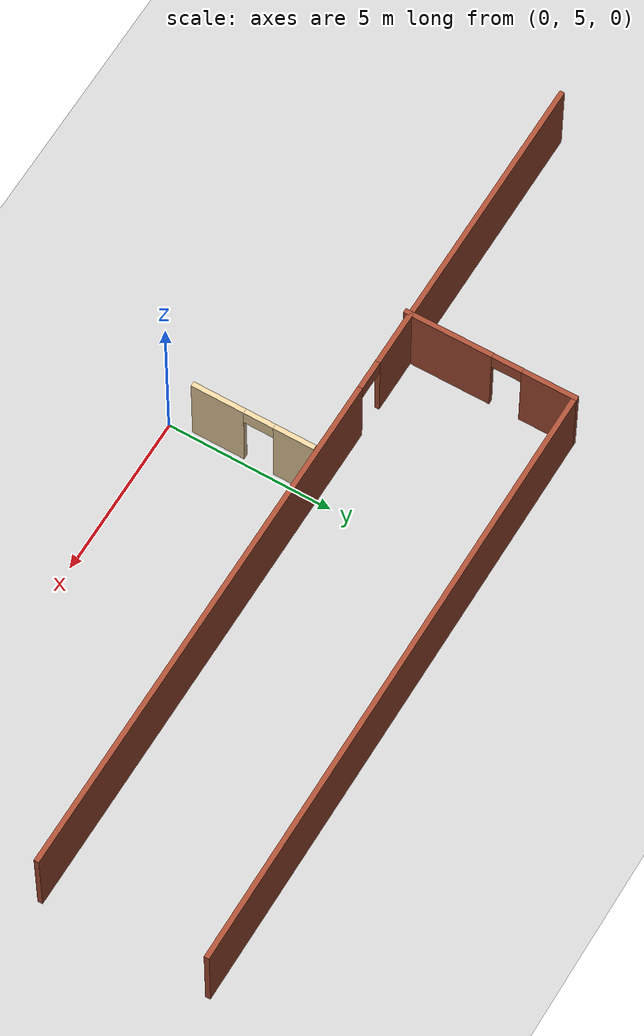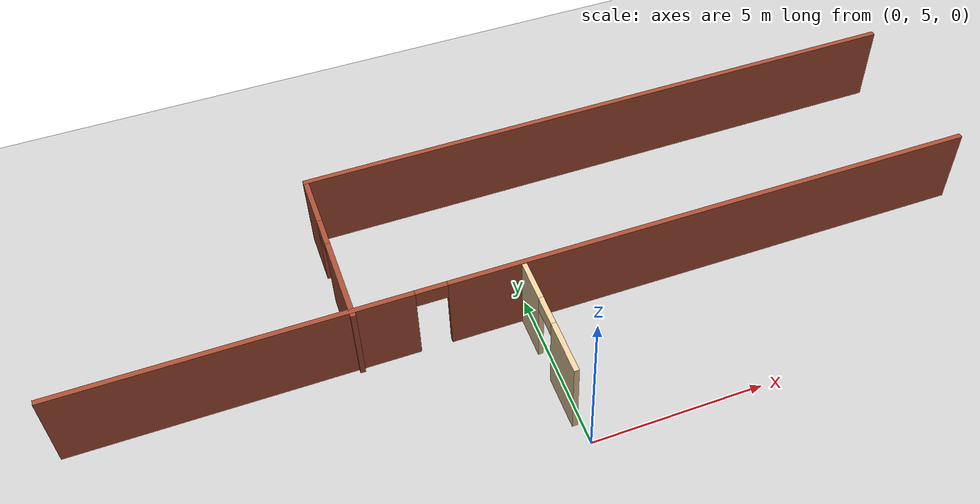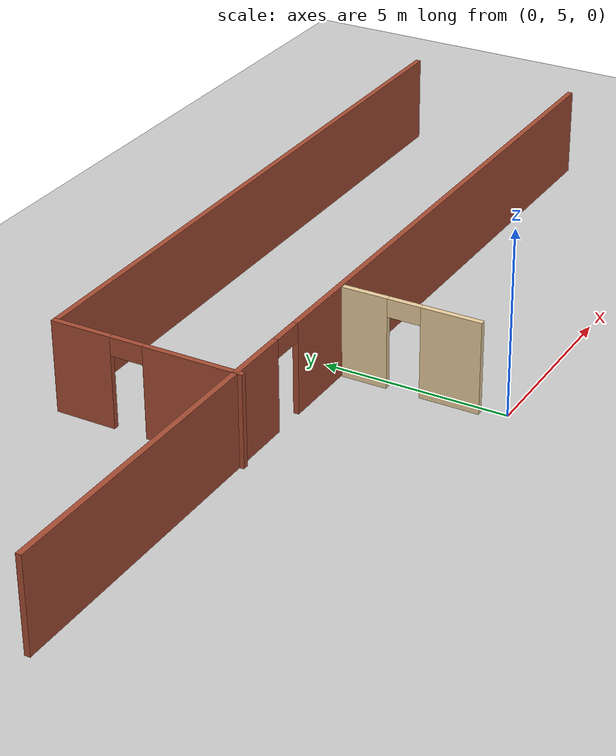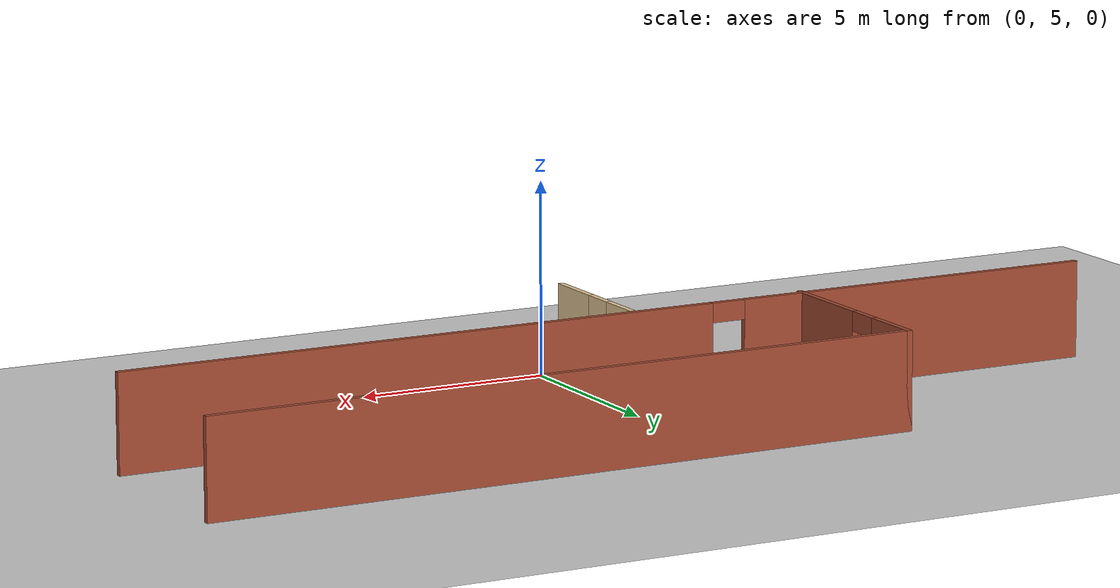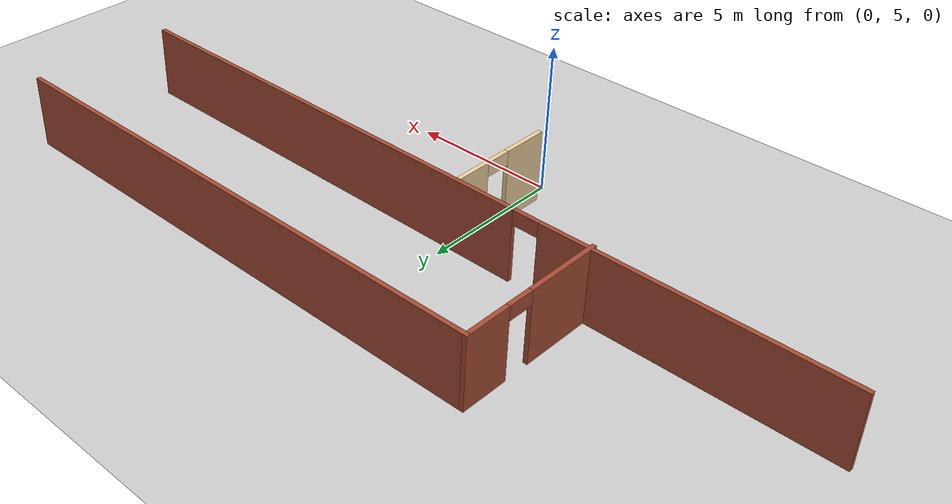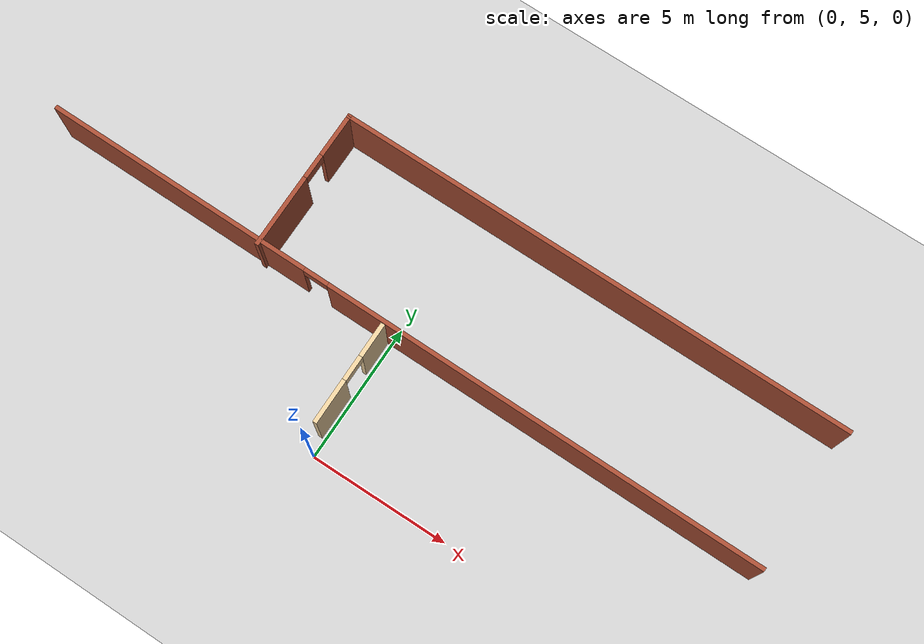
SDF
<sdf version="1.7">
 <world name="default">
  <model name="ground_plane">
   <static>1</static>
   <link name="link">
    <collision name="collision">
     <geometry><plane><normal>0 0 1</normal><size>100 100</size></plane></geometry>
     <surface>
      <contact><collide_bitmask>65535</collide_bitmask></contact>
      <friction><ode><mu>100</mu><mu2>50</mu2></ode></friction>
     </surface>
    </collision>
    <visual name="visual">
     <cast_shadows>0</cast_shadows>
     <geometry><plane><normal>0 0 1</normal><size>100 100</size></plane></geometry>
     <material>
      <script><uri>file://media/materials/scripts/gazebo.material</uri><name>Gazebo/Grey</name></script>
     </material>
    </visual>
   </link>
  </model>
  <model name="newworld">
   <link name="Wall_40">
    <pose>0.085373 8.57177 0 0 -0 3.13808</pose>
    <visual name="Wall_40_Visual_2">
     <pose>3.09238 0 2.25 0 -0 0</pose>
     <geometry><box><size>0.9 0.15 0.5</size></box></geometry>
     <material>
      <script><uri>file://media/materials/scripts/gazebo.material</uri><name>Gazebo/Bricks</name></script>
      <ambient>1 1 1 1</ambient>
      <shader type="pixel"/>
     </material>
     <meta><layer>0</layer></meta>
    </visual>
    <visual name="Wall_40_Visual_0">
     <pose>-5.33385 0 1.25 0 -0 0</pose>
     <geometry><box><size>15.9525 0.15 2.5</size></box></geometry>
     <material>
      <script><uri>file://media/materials/scripts/gazebo.material</uri><name>Gazebo/Bricks</name></script>
      <ambient>1 1 1 1</ambient>
      <shader type="pixel"/>
     </material>
     <meta><layer>0</layer></meta>
    </visual>
    <visual name="Wall_40_Visual_1">
     <pose>8.42623 0 1.25 0 -0 0</pose>
     <geometry><box><size>9.76771 0.15 2.5</size></box></geometry>
     <material>
      <script><uri>file://media/materials/scripts/gazebo.material</uri><name>Gazebo/Bricks</name></script>
      <ambient>1 1 1 1</ambient>
      <shader type="pixel"/>
     </material>
     <meta><layer>0</layer></meta>
    </visual>
    <collision name="Wall_40_Collision_0">
     <pose>-5.33385 0 1.25 0 -0 0</pose>
     <geometry><box><size>15.9525 0.15 2.5</size></box></geometry>
     <surface>
      <friction>
       <ode><mu>1</mu><mu2>1</mu2><fdir1>0 0 0</fdir1><slip1>0</slip1><slip2>0</slip2></ode>
       <torsional>
        <coefficient>1</coefficient>
        <patch_radius>0</patch_radius>
        <surface_radius>0</surface_radius>
        <use_patch_radius>1</use_patch_radius>
        <ode><slip>0</slip></ode>
       </torsional>
      </friction>
      <bounce><restitution_coefficient>0</restitution_coefficient><threshold>1e+06</threshold></bounce>
      <contact>
       <collide_without_contact>0</collide_without_contact>
       <collide_without_contact_bitmask>1</collide_without_contact_bitmask>
       <collide_bitmask>1</collide_bitmask>
       <ode>
        <soft_cfm>0</soft_cfm>
        <soft_erp>0.2</soft_erp>
        <kp>1e+13</kp>
        <kd>1</kd>
        <max_vel>0.01</max_vel>
        <min_depth>0</min_depth>
       </ode>
       <bullet>
        <split_impulse>1</split_impulse>
        <split_impulse_penetration_threshold>-0.01</split_impulse_penetration_threshold>
        <soft_cfm>0</soft_cfm>
        <soft_erp>0.2</soft_erp>
        <kp>1e+13</kp>
        <kd>1</kd>
       </bullet>
      </contact>
     </surface>
    </collision>
    <collision name="Wall_40_Collision_1">
     <pose>8.42623 0 1.25 0 -0 0</pose>
     <geometry><box><size>9.76771 0.15 2.5</size></box></geometry>
     <surface>
      <friction>
       <ode><mu>1</mu><mu2>1</mu2><fdir1>0 0 0</fdir1><slip1>0</slip1><slip2>0</slip2></ode>
       <torsional>
        <coefficient>1</coefficient>
        <patch_radius>0</patch_radius>
        <surface_radius>0</surface_radius>
        <use_patch_radius>1</use_patch_radius>
        <ode><slip>0</slip></ode>
       </torsional>
      </friction>
      <bounce><restitution_coefficient>0</restitution_coefficient><threshold>1e+06</threshold></bounce>
      <contact>
       <collide_without_contact>0</collide_without_contact>
       <collide_without_contact_bitmask>1</collide_without_contact_bitmask>
       <collide_bitmask>1</collide_bitmask>
       <ode>
        <soft_cfm>0</soft_cfm>
        <soft_erp>0.2</soft_erp>
        <kp>1e+13</kp>
        <kd>1</kd>
        <max_vel>0.01</max_vel>
        <min_depth>0</min_depth>
       </ode>
       <bullet>
        <split_impulse>1</split_impulse>
        <split_impulse_penetration_threshold>-0.01</split_impulse_penetration_threshold>
        <soft_cfm>0</soft_cfm>
        <soft_erp>0.2</soft_erp>
        <kp>1e+13</kp>
        <kd>1</kd>
       </bullet>
      </contact>
     </surface>
    </collision>
    <collision name="Wall_40_Collision_2">
     <pose>3.09238 0 2.25 0 -0 0</pose>
     <geometry><box><size>0.9 0.15 0.5</size></box></geometry>
     <surface>
      <friction>
       <ode><mu>1</mu><mu2>1</mu2><fdir1>0 0 0</fdir1><slip1>0</slip1><slip2>0</slip2></ode>
       <torsional>
        <coefficient>1</coefficient>
        <patch_radius>0</patch_radius>
        <surface_radius>0</surface_radius>
        <use_patch_radius>1</use_patch_radius>
        <ode><slip>0</slip></ode>
       </torsional>
      </friction>
      <bounce><restitution_coefficient>0</restitution_coefficient><threshold>1e+06</threshold></bounce>
      <contact>
       <collide_without_contact>0</collide_without_contact>
       <collide_without_contact_bitmask>1</collide_without_contact_bitmask>
       <collide_bitmask>1</collide_bitmask>
       <ode>
        <soft_cfm>0</soft_cfm>
        <soft_erp>0.2</soft_erp>
        <kp>1e+13</kp>
        <kd>1</kd>
        <max_vel>0.01</max_vel>
        <min_depth>0</min_depth>
       </ode>
       <bullet>
        <split_impulse>1</split_impulse>
        <split_impulse_penetration_threshold>-0.01</split_impulse_penetration_threshold>
        <soft_cfm>0</soft_cfm>
        <soft_erp>0.2</soft_erp>
        <kp>1e+13</kp>
        <kd>1</kd>
       </bullet>
      </contact>
     </surface>
    </collision>
   </link>
   <link name="Wall_58">
    <pose>-0.404713 6.61032 0 0 -0 1.5708</pose>
    <visual name="Wall_58_Visual_2">
     <pose>0.183638 0 2.25 0 -0 0</pose>
     <geometry><box><size>0.9 0.15 0.5</size></box></geometry>
     <material>
      <script><uri>file://media/materials/scripts/gazebo.material</uri><name>Gazebo/Grey</name></script>
      <ambient>0.921569 0.807843 0.615686 1</ambient>
      <shader type="pixel"/>
     </material>
     <meta><layer>0</layer></meta>
    </visual>
    <visual name="Wall_58_Visual_0">
     <pose>-1.07068 0 1.25 0 -0 0</pose>
     <geometry><box><size>1.60864 0.15 2.5</size></box></geometry>
     <material>
      <script><uri>file://media/materials/scripts/gazebo.material</uri><name>Gazebo/Grey</name></script>
      <ambient>0.921569 0.807843 0.615686 1</ambient>
      <shader type="pixel"/>
     </material>
     <meta><layer>0</layer></meta>
    </visual>
    <visual name="Wall_58_Visual_1">
     <pose>1.25432 0 1.25 0 -0 0</pose>
     <geometry><box><size>1.24136 0.15 2.5</size></box></geometry>
     <material>
      <script><uri>file://media/materials/scripts/gazebo.material</uri><name>Gazebo/Grey</name></script>
      <ambient>0.921569 0.807843 0.615686 1</ambient>
      <shader type="pixel"/>
     </material>
     <meta><layer>0</layer></meta>
    </visual>
    <collision name="Wall_58_Collision_0">
     <pose>-1.07068 0 1.25 0 -0 0</pose>
     <geometry><box><size>1.60864 0.15 2.5</size></box></geometry>
     <surface>
      <friction>
       <ode><mu>1</mu><mu2>1</mu2><fdir1>0 0 0</fdir1><slip1>0</slip1><slip2>0</slip2></ode>
       <torsional>
        <coefficient>1</coefficient>
        <patch_radius>0</patch_radius>
        <surface_radius>0</surface_radius>
        <use_patch_radius>1</use_patch_radius>
        <ode><slip>0</slip></ode>
       </torsional>
      </friction>
      <bounce><restitution_coefficient>0</restitution_coefficient><threshold>1e+06</threshold></bounce>
      <contact>
       <collide_without_contact>0</collide_without_contact>
       <collide_without_contact_bitmask>1</collide_without_contact_bitmask>
       <collide_bitmask>1</collide_bitmask>
       <ode>
        <soft_cfm>0</soft_cfm>
        <soft_erp>0.2</soft_erp>
        <kp>1e+13</kp>
        <kd>1</kd>
        <max_vel>0.01</max_vel>
        <min_depth>0</min_depth>
       </ode>
       <bullet>
        <split_impulse>1</split_impulse>
        <split_impulse_penetration_threshold>-0.01</split_impulse_penetration_threshold>
        <soft_cfm>0</soft_cfm>
        <soft_erp>0.2</soft_erp>
        <kp>1e+13</kp>
        <kd>1</kd>
       </bullet>
      </contact>
     </surface>
    </collision>
    <collision name="Wall_58_Collision_1">
     <pose>1.25432 0 1.25 0 -0 0</pose>
     <geometry><box><size>1.24136 0.15 2.5</size></box></geometry>
     <surface>
      <friction>
       <ode><mu>1</mu><mu2>1</mu2><fdir1>0 0 0</fdir1><slip1>0</slip1><slip2>0</slip2></ode>
       <torsional>
        <coefficient>1</coefficient>
        <patch_radius>0</patch_radius>
        <surface_radius>0</surface_radius>
        <use_patch_radius>1</use_patch_radius>
        <ode><slip>0</slip></ode>
       </torsional>
      </friction>
      <bounce><restitution_coefficient>0</restitution_coefficient><threshold>1e+06</threshold></bounce>
      <contact>
       <collide_without_contact>0</collide_without_contact>
       <collide_without_contact_bitmask>1</collide_without_contact_bitmask>
       <collide_bitmask>1</collide_bitmask>
       <ode>
        <soft_cfm>0</soft_cfm>
        <soft_erp>0.2</soft_erp>
        <kp>1e+13</kp>
        <kd>1</kd>
        <max_vel>0.01</max_vel>
        <min_depth>0</min_depth>
       </ode>
       <bullet>
        <split_impulse>1</split_impulse>
        <split_impulse_penetration_threshold>-0.01</split_impulse_penetration_threshold>
        <soft_cfm>0</soft_cfm>
        <soft_erp>0.2</soft_erp>
        <kp>1e+13</kp>
        <kd>1</kd>
       </bullet>
      </contact>
     </surface>
    </collision>
    <collision name="Wall_58_Collision_2">
     <pose>0.183638 0 2.25 0 -0 0</pose>
     <geometry><box><size>0.9 0.15 0.5</size></box></geometry>
     <surface>
      <friction>
       <ode><mu>1</mu><mu2>1</mu2><fdir1>0 0 0</fdir1><slip1>0</slip1><slip2>0</slip2></ode>
       <torsional>
        <coefficient>1</coefficient>
        <patch_radius>0</patch_radius>
        <surface_radius>0</surface_radius>
        <use_patch_radius>1</use_patch_radius>
        <ode><slip>0</slip></ode>
       </torsional>
      </friction>
      <bounce><restitution_coefficient>0</restitution_coefficient><threshold>1e+06</threshold></bounce>
      <contact>
       <collide_without_contact>0</collide_without_contact>
       <collide_without_contact_bitmask>1</collide_without_contact_bitmask>
       <collide_bitmask>1</collide_bitmask>
       <ode>
        <soft_cfm>0</soft_cfm>
        <soft_erp>0.2</soft_erp>
        <kp>1e+13</kp>
        <kd>1</kd>
        <max_vel>0.01</max_vel>
        <min_depth>0</min_depth>
       </ode>
       <bullet>
        <split_impulse>1</split_impulse>
        <split_impulse_penetration_threshold>-0.01</split_impulse_penetration_threshold>
        <soft_cfm>0</soft_cfm>
        <soft_erp>0.2</soft_erp>
        <kp>1e+13</kp>
        <kd>1</kd>
       </bullet>
      </contact>
     </surface>
    </collision>
   </link>
   <link name="Wall_63">
    <pose>-5.17255 11.0249 0 0 -0 1.5708</pose>
    <visual name="Wall_63_Visual_0">
     <pose>-1.27959 0 1.25 0 -0 0</pose>
     <geometry><box><size>2.69081 0.15 2.5</size></box></geometry>
     <material>
      <script><uri>file://media/materials/scripts/gazebo.material</uri><name>Gazebo/Bricks</name></script>
      <ambient>1 1 1 1</ambient>
      <shader type="pixel"/>
     </material>
     <meta><layer>0</layer></meta>
    </visual>
    <visual name="Wall_63_Visual_2">
     <pose>0.515814 0 2.25 0 -0 0</pose>
     <geometry><box><size>0.9 0.15 0.5</size></box></geometry>
     <material>
      <script><uri>file://media/materials/scripts/gazebo.material</uri><name>Gazebo/Bricks</name></script>
      <ambient>1 1 1 1</ambient>
      <shader type="pixel"/>
     </material>
     <meta><layer>0</layer></meta>
    </visual>
    <visual name="Wall_63_Visual_1">
     <pose>1.79541 0 1.25 0 -0 0</pose>
     <geometry><box><size>1.65919 0.15 2.5</size></box></geometry>
     <material>
      <script><uri>file://media/materials/scripts/gazebo.material</uri><name>Gazebo/Bricks</name></script>
      <ambient>1 1 1 1</ambient>
      <shader type="pixel"/>
     </material>
     <meta><layer>0</layer></meta>
    </visual>
    <collision name="Wall_63_Collision_1">
     <pose>1.79541 0 1.25 0 -0 0</pose>
     <geometry><box><size>1.65919 0.15 2.5</size></box></geometry>
     <surface>
      <friction>
       <ode><mu>1</mu><mu2>1</mu2><fdir1>0 0 0</fdir1><slip1>0</slip1><slip2>0</slip2></ode>
       <torsional>
        <coefficient>1</coefficient>
        <patch_radius>0</patch_radius>
        <surface_radius>0</surface_radius>
        <use_patch_radius>1</use_patch_radius>
        <ode><slip>0</slip></ode>
       </torsional>
      </friction>
      <bounce><restitution_coefficient>0</restitution_coefficient><threshold>1e+06</threshold></bounce>
      <contact>
       <collide_without_contact>0</collide_without_contact>
       <collide_without_contact_bitmask>1</collide_without_contact_bitmask>
       <collide_bitmask>1</collide_bitmask>
       <ode>
        <soft_cfm>0</soft_cfm>
        <soft_erp>0.2</soft_erp>
        <kp>1e+13</kp>
        <kd>1</kd>
        <max_vel>0.01</max_vel>
        <min_depth>0</min_depth>
       </ode>
       <bullet>
        <split_impulse>1</split_impulse>
        <split_impulse_penetration_threshold>-0.01</split_impulse_penetration_threshold>
        <soft_cfm>0</soft_cfm>
        <soft_erp>0.2</soft_erp>
        <kp>1e+13</kp>
        <kd>1</kd>
       </bullet>
      </contact>
     </surface>
    </collision>
    <collision name="Wall_63_Collision_2">
     <pose>0.515814 0 2.25 0 -0 0</pose>
     <geometry><box><size>0.9 0.15 0.5</size></box></geometry>
     <surface>
      <friction>
       <ode><mu>1</mu><mu2>1</mu2><fdir1>0 0 0</fdir1><slip1>0</slip1><slip2>0</slip2></ode>
       <torsional>
        <coefficient>1</coefficient>
        <patch_radius>0</patch_radius>
        <surface_radius>0</surface_radius>
        <use_patch_radius>1</use_patch_radius>
        <ode><slip>0</slip></ode>
       </torsional>
      </friction>
      <bounce><restitution_coefficient>0</restitution_coefficient><threshold>1e+06</threshold></bounce>
      <contact>
       <collide_without_contact>0</collide_without_contact>
       <collide_without_contact_bitmask>1</collide_without_contact_bitmask>
       <collide_bitmask>1</collide_bitmask>
       <ode>
        <soft_cfm>0</soft_cfm>
        <soft_erp>0.2</soft_erp>
        <kp>1e+13</kp>
        <kd>1</kd>
        <max_vel>0.01</max_vel>
        <min_depth>0</min_depth>
       </ode>
       <bullet>
        <split_impulse>1</split_impulse>
        <split_impulse_penetration_threshold>-0.01</split_impulse_penetration_threshold>
        <soft_cfm>0</soft_cfm>
        <soft_erp>0.2</soft_erp>
        <kp>1e+13</kp>
        <kd>1</kd>
       </bullet>
      </contact>
     </surface>
    </collision>
    <collision name="Wall_63_Collision_0">
     <pose>-1.27959 0 1.25 0 -0 0</pose>
     <geometry><box><size>2.69081 0.15 2.5</size></box></geometry>
     <surface>
      <friction>
       <ode><mu>1</mu><mu2>1</mu2><fdir1>0 0 0</fdir1><slip1>0</slip1><slip2>0</slip2></ode>
       <torsional>
        <coefficient>1</coefficient>
        <patch_radius>0</patch_radius>
        <surface_radius>0</surface_radius>
        <use_patch_radius>1</use_patch_radius>
        <ode><slip>0</slip></ode>
       </torsional>
      </friction>
      <bounce><restitution_coefficient>0</restitution_coefficient><threshold>1e+06</threshold></bounce>
      <contact>
       <collide_without_contact>0</collide_without_contact>
       <collide_without_contact_bitmask>1</collide_without_contact_bitmask>
       <collide_bitmask>1</collide_bitmask>
       <ode>
        <soft_cfm>0</soft_cfm>
        <soft_erp>0.2</soft_erp>
        <kp>1e+13</kp>
        <kd>1</kd>
        <max_vel>0.01</max_vel>
        <min_depth>0</min_depth>
       </ode>
       <bullet>
        <split_impulse>1</split_impulse>
        <split_impulse_penetration_threshold>-0.01</split_impulse_penetration_threshold>
        <soft_cfm>0</soft_cfm>
        <soft_erp>0.2</soft_erp>
        <kp>1e+13</kp>
        <kd>1</kd>
       </bullet>
      </contact>
     </surface>
    </collision>
   </link>
   <link name="Wall_64">
    <pose>4.11367 13.5749 0 0 -0 0</pose>
    <visual name="Wall_64_Visual">
     <pose>0 0 1.25 0 -0 0</pose>
     <geometry><box><size>18.7224 0.15 2.5</size></box></geometry>
     <material>
      <script><uri>file://media/materials/scripts/gazebo.material</uri><name>Gazebo/Bricks</name></script>
      <ambient>1 1 1 1</ambient>
      <shader type="pixel"/>
     </material>
     <meta><layer>0</layer></meta>
    </visual>
    <collision name="Wall_64_Collision">
     <pose>0 0 1.25 0 -0 0</pose>
     <geometry><box><size>18.7224 0.15 2.5</size></box></geometry>
     <surface>
      <friction>
       <ode><mu>1</mu><mu2>1</mu2><fdir1>0 0 0</fdir1><slip1>0</slip1><slip2>0</slip2></ode>
       <torsional>
        <coefficient>1</coefficient>
        <patch_radius>0</patch_radius>
        <surface_radius>0</surface_radius>
        <use_patch_radius>1</use_patch_radius>
        <ode><slip>0</slip></ode>
       </torsional>
      </friction>
      <bounce><restitution_coefficient>0</restitution_coefficient><threshold>1e+06</threshold></bounce>
      <contact>
       <collide_without_contact>0</collide_without_contact>
       <collide_without_contact_bitmask>1</collide_without_contact_bitmask>
       <collide_bitmask>1</collide_bitmask>
       <ode>
        <soft_cfm>0</soft_cfm>
        <soft_erp>0.2</soft_erp>
        <kp>1e+13</kp>
        <kd>1</kd>
        <max_vel>0.01</max_vel>
        <min_depth>0</min_depth>
       </ode>
       <bullet>
        <split_impulse>1</split_impulse>
        <split_impulse_penetration_threshold>-0.01</split_impulse_penetration_threshold>
        <soft_cfm>0</soft_cfm>
        <soft_erp>0.2</soft_erp>
        <kp>1e+13</kp>
        <kd>1</kd>
       </bullet>
      </contact>
     </surface>
    </collision>
   </link>
   <static>1</static>
   <pose>0.193711 0.903984 0 0 -0 0</pose>
  </model>
 </world>
</sdf>
